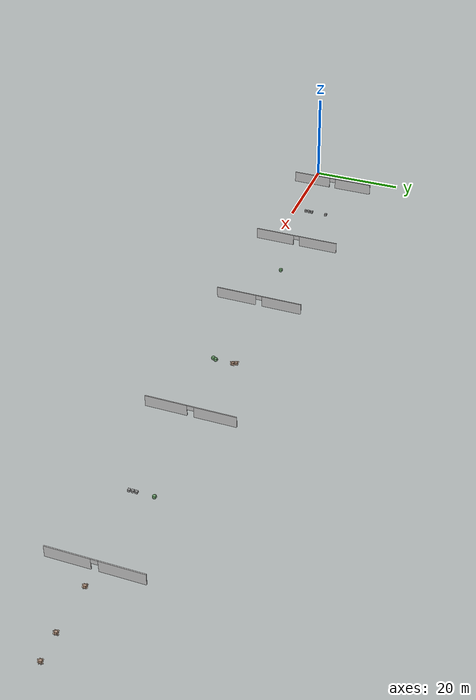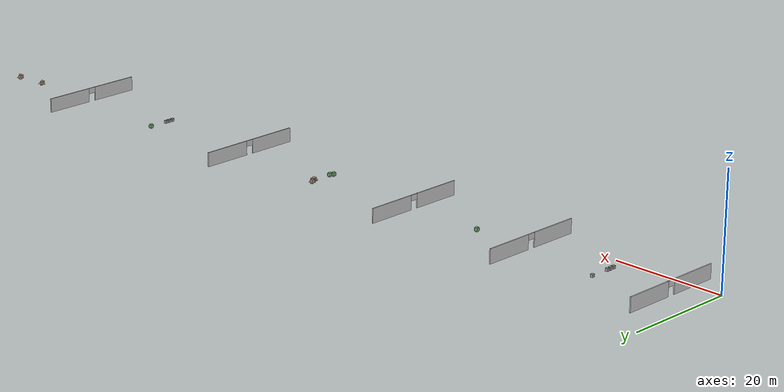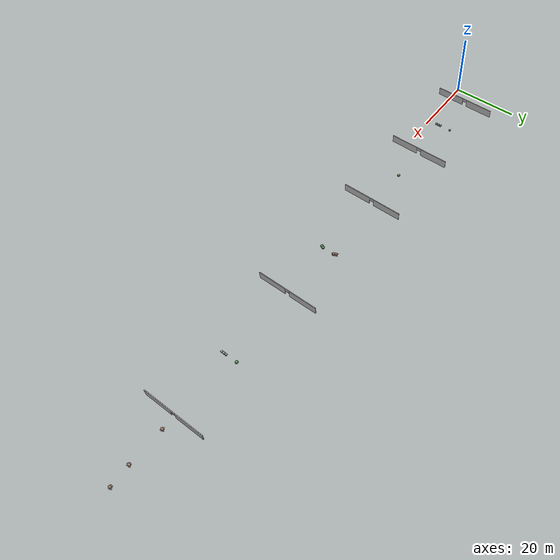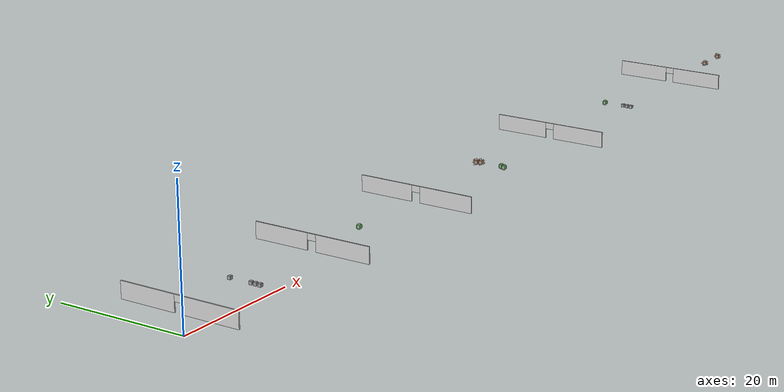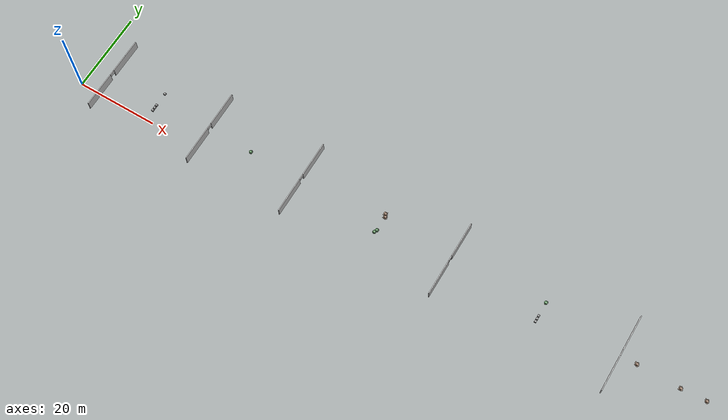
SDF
<sdf version="1.6">
 <world name="default">
  <light name="sun" type="directional">
   <pose>0 0 10 0 -0 0</pose>
   <diffuse>0.8 0.8 0.8 1</diffuse>
   <specular>0.2 0.2 0.2 1</specular>
   <attenuation>
    <range>1000</range>
    <constant>0.9</constant>
    <linear>0.01</linear>
    <quadratic>0.001</quadratic>
   </attenuation>
   <direction>-0.5 0.1 -0.9</direction>
  </light>
  <gravity>0 0 -9.8</gravity>
  <magnetic_field>6e-06 2.3e-05 -4.2e-05</magnetic_field>
  <atmosphere type="adiabatic"/>
  <physics name="default_physics" default="0" type="ode">
   <max_step_size>0.001</max_step_size>
   <real_time_factor>1</real_time_factor>
   <real_time_update_rate>1000</real_time_update_rate>
  </physics>
  <scene><ambient>0.4 0.4 0.4 1</ambient><background>0.9 0.9 0.9 1</background><shadows>1</shadows></scene>
  <spherical_coordinates>
   <surface_model>EARTH_WGS84</surface_model>
   <latitude_deg>0</latitude_deg>
   <longitude_deg>0</longitude_deg>
   <elevation>0</elevation>
   <heading_deg>0</heading_deg>
  </spherical_coordinates>
  <model name="trap_cont_1_attr">
   <static>0</static>
   <static>0</static>
   <link name="normal_cue_0::vis_cue_normal">
    <inertial>
     <mass>1</mass>
     <inertia>
      <ixx>0.166667</ixx>
      <ixy>0</ixy>
      <ixz>0</ixz>
      <iyy>0.166667</iyy>
      <iyz>0</iyz>
      <izz>0.166667</izz>
     </inertia>
    </inertial>
    <collision name="collision"><geometry><box><size>0.5 0.5 0.5</size></box></geometry></collision>
    <visual name="box_visual">
     <geometry><box><size>0.5 0.5 0.5</size></box></geometry>
     <material>
      <script><name>Gazebo/Grey</name><uri>file://media/materials/scripts/gazebo.material</uri></script>
     </material>
    </visual>
    <pose>0 -2.48 0.25 0 -0 0</pose>
   </link>
   <static>0</static>
   <link name="normal_cue_1::vis_cue_normal">
    <inertial>
     <mass>1</mass>
     <inertia>
      <ixx>0.166667</ixx>
      <ixy>0</ixy>
      <ixz>0</ixz>
      <iyy>0.166667</iyy>
      <iyz>0</iyz>
      <izz>0.166667</izz>
     </inertia>
    </inertial>
    <collision name="collision"><geometry><box><size>0.5 0.5 0.5</size></box></geometry></collision>
    <visual name="box_visual">
     <geometry><box><size>0.5 0.5 0.5</size></box></geometry>
     <material>
      <script><name>Gazebo/Grey</name><uri>file://media/materials/scripts/gazebo.material</uri></script>
     </material>
    </visual>
    <pose>0 -1.745 0.25 0 -0 0</pose>
   </link>
   <static>0</static>
   <link name="normal_cue_2::vis_cue_normal">
    <inertial>
     <mass>1</mass>
     <inertia>
      <ixx>0.166667</ixx>
      <ixy>0</ixy>
      <ixz>0</ixz>
      <iyy>0.166667</iyy>
      <iyz>0</iyz>
      <izz>0.166667</izz>
     </inertia>
    </inertial>
    <collision name="collision"><geometry><box><size>0.5 0.5 0.5</size></box></geometry></collision>
    <visual name="box_visual">
     <geometry><box><size>0.5 0.5 0.5</size></box></geometry>
     <material>
      <script><name>Gazebo/Grey</name><uri>file://media/materials/scripts/gazebo.material</uri></script>
     </material>
    </visual>
    <pose>0 -1.01 0.25 0 -0 0</pose>
   </link>
   <static>0</static>
   <link name="normal_cue_3::vis_cue_normal">
    <inertial>
     <mass>1</mass>
     <inertia>
      <ixx>0.166667</ixx>
      <ixy>0</ixy>
      <ixz>0</ixz>
      <iyy>0.166667</iyy>
      <iyz>0</iyz>
      <izz>0.166667</izz>
     </inertia>
    </inertial>
    <collision name="collision"><geometry><box><size>0.5 0.5 0.5</size></box></geometry></collision>
    <visual name="box_visual">
     <geometry><box><size>0.5 0.5 0.5</size></box></geometry>
     <material>
      <script><name>Gazebo/Grey</name><uri>file://media/materials/scripts/gazebo.material</uri></script>
     </material>
    </visual>
    <pose>0 2.48 0.25 0 -0 0</pose>
   </link>
   <pose>18.2945 5.26555 -1.8e-05 -6e-06 0 0</pose>
  </model>
  <model name="trap_cont_2_ubias">
   <static>0</static>
   <static>0</static>
   <link name="attracting_cue_0::vis_cue_attract">
    <inertial>
     <mass>1</mass>
     <inertia>
      <ixx>0.166667</ixx>
      <ixy>0</ixy>
      <ixz>0</ixz>
      <iyy>0.166667</iyy>
      <iyz>0</iyz>
      <izz>0.166667</izz>
     </inertia>
    </inertial>
    <collision name="collision"><geometry><box><size>0.5 0.5 0.5</size></box></geometry></collision>
    <visual name="box_visual">
     <geometry><box><size>0.5 0.5 0.5</size></box></geometry>
     <material>
      <script><name>Gazebo/Grey</name><uri>file://media/materials/scripts/gazebo.material</uri></script>
     </material>
    </visual>
    <visual name="cue_visual">
     <geometry><sphere><radius>0.45</radius></sphere></geometry>
     <material>
      <ambient>0 1 0 0.15</ambient>
      <diffuse>0 1 0 0.15</diffuse>
      <specular>0 1 0 0.15</specular>
      <emissive>0 0 0 0</emissive>
     </material>
    </visual>
    <pose>0 -2.48 0.25 0 -0 0</pose>
   </link>
   <static>0</static>
   <link name="attracting_cue_1::vis_cue_attract">
    <inertial>
     <mass>1</mass>
     <inertia>
      <ixx>0.166667</ixx>
      <ixy>0</ixy>
      <ixz>0</ixz>
      <iyy>0.166667</iyy>
      <iyz>0</iyz>
      <izz>0.166667</izz>
     </inertia>
    </inertial>
    <collision name="collision"><geometry><box><size>0.5 0.5 0.5</size></box></geometry></collision>
    <visual name="box_visual">
     <geometry><box><size>0.5 0.5 0.5</size></box></geometry>
     <material>
      <script><name>Gazebo/Grey</name><uri>file://media/materials/scripts/gazebo.material</uri></script>
     </material>
    </visual>
    <visual name="cue_visual">
     <geometry><sphere><radius>0.45</radius></sphere></geometry>
     <material>
      <ambient>0 1 0 0.15</ambient>
      <diffuse>0 1 0 0.15</diffuse>
      <specular>0 1 0 0.15</specular>
      <emissive>0 0 0 0</emissive>
     </material>
    </visual>
    <pose>0.3 -1.845 0.25 0 -0 0</pose>
   </link>
   <static>0</static>
   <link name="repelling_cue_0::vis_cue_repel">
    <inertial>
     <mass>1</mass>
     <inertia>
      <ixx>0.166667</ixx>
      <ixy>0</ixy>
      <ixz>0</ixz>
      <iyy>0.166667</iyy>
      <iyz>0</iyz>
      <izz>0.166667</izz>
     </inertia>
    </inertial>
    <collision name="collision"><geometry><box><size>0.5 0.5 0.5</size></box></geometry></collision>
    <visual name="box_visual">
     <geometry><box><size>0.5 0.5 0.5</size></box></geometry>
     <material>
      <script><name>Gazebo/Grey</name><uri>file://media/materials/scripts/gazebo.material</uri></script>
     </material>
    </visual>
    <visual name="cue_visual">
     <geometry><mesh><uri>model://repelling_cue_2.dae</uri><scale>0.85 0.85 0.85</scale></mesh></geometry>
     <material>
      <ambient>1 0.4 0 0.2</ambient>
      <diffuse>1 0.4 0 0.2</diffuse>
      <specular>1 0.4 0 0.5</specular>
      <emissive>0.5 0.2 0 0.1</emissive>
     </material>
    </visual>
    <pose>0.3 1.845 0.25 0 -0 0</pose>
   </link>
   <static>0</static>
   <link name="repelling_cue_1::vis_cue_repel">
    <inertial>
     <mass>1</mass>
     <inertia>
      <ixx>0.166667</ixx>
      <ixy>0</ixy>
      <ixz>0</ixz>
      <iyy>0.166667</iyy>
      <iyz>0</iyz>
      <izz>0.166667</izz>
     </inertia>
    </inertial>
    <collision name="collision"><geometry><box><size>0.5 0.5 0.5</size></box></geometry></collision>
    <visual name="box_visual">
     <geometry><box><size>0.5 0.5 0.5</size></box></geometry>
     <material>
      <script><name>Gazebo/Grey</name><uri>file://media/materials/scripts/gazebo.material</uri></script>
     </material>
    </visual>
    <visual name="cue_visual">
     <geometry><mesh><uri>model://repelling_cue_2.dae</uri><scale>0.85 0.85 0.85</scale></mesh></geometry>
     <material>
      <ambient>1 0.4 0 0.2</ambient>
      <diffuse>1 0.4 0 0.2</diffuse>
      <specular>1 0.4 0 0.5</specular>
      <emissive>0.5 0.2 0 0.1</emissive>
     </material>
    </visual>
    <pose>0 2.48 0.25 0 -0 0</pose>
   </link>
   <pose>78.2658 5.37701 -2.4e-05 -7e-06 7e-06 0</pose>
  </model>
  <model name="vis_cue_attract">
   <static>0</static>
   <pose>43.8193 5.4016 0.249997 0 -6e-06 0</pose>
   <link name="vis_cue_attract">
    <inertial>
     <mass>1</mass>
     <inertia>
      <ixx>0.166667</ixx>
      <ixy>0</ixy>
      <ixz>0</ixz>
      <iyy>0.166667</iyy>
      <iyz>0</iyz>
      <izz>0.166667</izz>
     </inertia>
    </inertial>
    <collision name="collision"><geometry><box><size>0.5 0.5 0.5</size></box></geometry></collision>
    <visual name="box_visual">
     <geometry><box><size>0.5 0.5 0.5</size></box></geometry>
     <material>
      <script><name>Gazebo/Grey</name><uri>file://media/materials/scripts/gazebo.material</uri></script>
     </material>
    </visual>
    <visual name="cue_visual">
     <geometry><sphere><radius>0.45</radius></sphere></geometry>
     <material>
      <ambient>0 1 0 0.15</ambient>
      <diffuse>0 1 0 0.15</diffuse>
      <specular>0 1 0 0.15</specular>
      <emissive>0 0 0 0</emissive>
     </material>
    </visual>
   </link>
  </model>
  <model name="vis_cue_repel">
   <static>0</static>
   <pose>152.409 5.33396 0.249993 0 6e-06 0</pose>
   <link name="vis_cue_repel">
    <inertial>
     <mass>1</mass>
     <inertia>
      <ixx>0.166667</ixx>
      <ixy>0</ixy>
      <ixz>0</ixz>
      <iyy>0.166667</iyy>
      <iyz>0</iyz>
      <izz>0.166667</izz>
     </inertia>
    </inertial>
    <collision name="collision"><geometry><box><size>0.5 0.5 0.5</size></box></geometry></collision>
    <visual name="box_visual">
     <geometry><box><size>0.5 0.5 0.5</size></box></geometry>
     <material>
      <script><name>Gazebo/Grey</name><uri>file://media/materials/scripts/gazebo.material</uri></script>
     </material>
    </visual>
    <visual name="cue_visual">
     <geometry><mesh><uri>model://repelling_cue_2.dae</uri><scale>0.85 0.85 0.85</scale></mesh></geometry>
     <material>
      <ambient>1 0.4 0 0.2</ambient>
      <diffuse>1 0.4 0 0.2</diffuse>
      <specular>1 0.4 0 0.5</specular>
      <emissive>0.5 0.2 0 0.1</emissive>
     </material>
    </visual>
   </link>
  </model>
  <model name="trap_cont_1_attr_0">
   <static>0</static>
   <static>0</static>
   <link name="normal_cue_0::vis_cue_normal">
    <inertial>
     <mass>1</mass>
     <inertia>
      <ixx>0.166667</ixx>
      <ixy>0</ixy>
      <ixz>0</ixz>
      <iyy>0.166667</iyy>
      <iyz>0</iyz>
      <izz>0.166667</izz>
     </inertia>
    </inertial>
    <collision name="collision"><geometry><box><size>0.5 0.5 0.5</size></box></geometry></collision>
    <visual name="box_visual">
     <geometry><box><size>0.5 0.5 0.5</size></box></geometry>
     <material>
      <script><name>Gazebo/Grey</name><uri>file://media/materials/scripts/gazebo.material</uri></script>
     </material>
    </visual>
    <pose>0 -2.48 0.25 0 -0 0</pose>
   </link>
   <static>0</static>
   <link name="normal_cue_1::vis_cue_normal">
    <inertial>
     <mass>1</mass>
     <inertia>
      <ixx>0.166667</ixx>
      <ixy>0</ixy>
      <ixz>0</ixz>
      <iyy>0.166667</iyy>
      <iyz>0</iyz>
      <izz>0.166667</izz>
     </inertia>
    </inertial>
    <collision name="collision"><geometry><box><size>0.5 0.5 0.5</size></box></geometry></collision>
    <visual name="box_visual">
     <geometry><box><size>0.5 0.5 0.5</size></box></geometry>
     <material>
      <script><name>Gazebo/Grey</name><uri>file://media/materials/scripts/gazebo.material</uri></script>
     </material>
    </visual>
    <pose>0 -1.745 0.25 0 -0 0</pose>
   </link>
   <static>0</static>
   <link name="normal_cue_2::vis_cue_normal">
    <inertial>
     <mass>1</mass>
     <inertia>
      <ixx>0.166667</ixx>
      <ixy>0</ixy>
      <ixz>0</ixz>
      <iyy>0.166667</iyy>
      <iyz>0</iyz>
      <izz>0.166667</izz>
     </inertia>
    </inertial>
    <collision name="collision"><geometry><box><size>0.5 0.5 0.5</size></box></geometry></collision>
    <visual name="box_visual">
     <geometry><box><size>0.5 0.5 0.5</size></box></geometry>
     <material>
      <script><name>Gazebo/Grey</name><uri>file://media/materials/scripts/gazebo.material</uri></script>
     </material>
    </visual>
    <pose>0 -1.01 0.25 0 -0 0</pose>
   </link>
   <static>0</static>
   <link name="attracting_cue_0::vis_cue_attract">
    <inertial>
     <mass>1</mass>
     <inertia>
      <ixx>0.166667</ixx>
      <ixy>0</ixy>
      <ixz>0</ixz>
      <iyy>0.166667</iyy>
      <iyz>0</iyz>
      <izz>0.166667</izz>
     </inertia>
    </inertial>
    <collision name="collision"><geometry><box><size>0.5 0.5 0.5</size></box></geometry></collision>
    <visual name="box_visual">
     <geometry><box><size>0.5 0.5 0.5</size></box></geometry>
     <material>
      <script><name>Gazebo/Grey</name><uri>file://media/materials/scripts/gazebo.material</uri></script>
     </material>
    </visual>
    <visual name="cue_visual">
     <geometry><sphere><radius>0.45</radius></sphere></geometry>
     <material>
      <ambient>0 1 0 0.15</ambient>
      <diffuse>0 1 0 0.15</diffuse>
      <specular>0 1 0 0.15</specular>
      <emissive>0 0 0 0</emissive>
     </material>
    </visual>
    <pose>0 2.48 0.25 0 -0 0</pose>
   </link>
   <pose>118.956 5.22752 1.4e-05 7e-06 -7e-06 0</pose>
  </model>
  <model name="vis_cue_repel_clone_clone">
   <static>0</static>
   <pose>158.322 5.64222 0.249997 -6e-06 0 0</pose>
   <link name="vis_cue_repel">
    <inertial>
     <mass>1</mass>
     <inertia>
      <ixx>0.166667</ixx>
      <ixy>0</ixy>
      <ixz>0</ixz>
      <iyy>0.166667</iyy>
      <iyz>0</iyz>
      <izz>0.166667</izz>
     </inertia>
    </inertial>
    <collision name="collision"><geometry><box><size>0.5 0.5 0.5</size></box></geometry></collision>
    <visual name="box_visual">
     <geometry><box><size>0.5 0.5 0.5</size></box></geometry>
     <material>
      <script><name>Gazebo/Grey</name><uri>file://media/materials/scripts/gazebo.material</uri></script>
     </material>
    </visual>
    <visual name="cue_visual">
     <geometry><mesh><uri>model://repelling_cue_2.dae</uri><scale>0.85 0.85 0.85</scale></mesh></geometry>
     <material>
      <ambient>1 0.4 0 0.2</ambient>
      <diffuse>1 0.4 0 0.2</diffuse>
      <specular>1 0.4 0 0.5</specular>
      <emissive>0.5 0.2 0 0.1</emissive>
     </material>
    </visual>
   </link>
  </model>
  <model name="vis_cue_repel_clone_clone_clone">
   <static>0</static>
   <pose>142.082 5.37791 0.249994 7e-06 -7e-06 0</pose>
   <link name="vis_cue_repel">
    <inertial>
     <mass>1</mass>
     <inertia>
      <ixx>0.166667</ixx>
      <ixy>0</ixy>
      <ixz>0</ixz>
      <iyy>0.166667</iyy>
      <iyz>0</iyz>
      <izz>0.166667</izz>
     </inertia>
    </inertial>
    <collision name="collision"><geometry><box><size>0.5 0.5 0.5</size></box></geometry></collision>
    <visual name="box_visual">
     <geometry><box><size>0.5 0.5 0.5</size></box></geometry>
     <material>
      <script><name>Gazebo/Grey</name><uri>file://media/materials/scripts/gazebo.material</uri></script>
     </material>
    </visual>
    <visual name="cue_visual">
     <geometry><mesh><uri>model://repelling_cue_2.dae</uri><scale>0.85 0.85 0.85</scale></mesh></geometry>
     <material>
      <ambient>1 0.4 0 0.2</ambient>
      <diffuse>1 0.4 0 0.2</diffuse>
      <specular>1 0.4 0 0.5</specular>
      <emissive>0.5 0.2 0 0.1</emissive>
     </material>
    </visual>
   </link>
  </model>
  <model name="study_track_gate_block_5">
   <static>1</static>
   <link name="gate_l">
    <pose>0 -5.1 1.25 0 -0 0</pose>
    <collision name="collision"><geometry><box><size>0.2 8.8 2.5</size></box></geometry></collision>
    <visual name="visual">
     <geometry><box><size>0.2 8.8 2.5</size></box></geometry>
     <material>
      <ambient>0.7 0.7 0.7 1</ambient>
      <diffuse>0.8 0.8 0.8 1</diffuse>
      <specular>0.1 0.1 0.1 1</specular>
      <emissive>0 0 0 0</emissive>
     </material>
    </visual>
   </link>
   <link name="gate_r">
    <pose>0 5.1 1.25 0 -0 0</pose>
    <collision name="collision"><geometry><box><size>0.2 8.8 2.5</size></box></geometry></collision>
    <visual name="visual">
     <geometry><box><size>0.2 8.8 2.5</size></box></geometry>
     <material>
      <ambient>0.7 0.7 0.7 1</ambient>
      <diffuse>0.8 0.8 0.8 1</diffuse>
      <specular>0.1 0.1 0.1 1</specular>
      <emissive>0 0 0 0</emissive>
     </material>
    </visual>
   </link>
   <link name="gate_m">
    <pose>0 0 2 0 -0 0</pose>
    <collision name="collision"><geometry><box><size>0.2 1.4 1</size></box></geometry></collision>
    <visual name="visual">
     <geometry><box><size>0.2 1.4 1</size></box></geometry>
     <material>
      <ambient>0.7 0.7 0.7 1</ambient>
      <diffuse>0.8 0.8 0.8 1</diffuse>
      <specular>0.1 0.1 0.1 1</specular>
      <emissive>0 0 0 0</emissive>
     </material>
    </visual>
   </link>
   <pose>138.104 5.26233 0 0 -0 0</pose>
  </model>
  <model name="study_track_gate_block_3">
   <static>1</static>
   <link name="gate_l">
    <pose>0 -5.1 1.25 0 -0 0</pose>
    <collision name="collision"><geometry><box><size>0.2 8.8 2.5</size></box></geometry></collision>
    <visual name="visual">
     <geometry><box><size>0.2 8.8 2.5</size></box></geometry>
     <material>
      <ambient>0.7 0.7 0.7 1</ambient>
      <diffuse>0.8 0.8 0.8 1</diffuse>
      <specular>0.1 0.1 0.1 1</specular>
      <emissive>0 0 0 0</emissive>
     </material>
    </visual>
   </link>
   <link name="gate_r">
    <pose>0 5.1 1.25 0 -0 0</pose>
    <collision name="collision"><geometry><box><size>0.2 8.8 2.5</size></box></geometry></collision>
    <visual name="visual">
     <geometry><box><size>0.2 8.8 2.5</size></box></geometry>
     <material>
      <ambient>0.7 0.7 0.7 1</ambient>
      <diffuse>0.8 0.8 0.8 1</diffuse>
      <specular>0.1 0.1 0.1 1</specular>
      <emissive>0 0 0 0</emissive>
     </material>
    </visual>
   </link>
   <link name="gate_m">
    <pose>0 0 2 0 -0 0</pose>
    <collision name="collision"><geometry><box><size>0.2 1.4 1</size></box></geometry></collision>
    <visual name="visual">
     <geometry><box><size>0.2 1.4 1</size></box></geometry>
     <material>
      <ambient>0.7 0.7 0.7 1</ambient>
      <diffuse>0.8 0.8 0.8 1</diffuse>
      <specular>0.1 0.1 0.1 1</specular>
      <emissive>0 0 0 0</emissive>
     </material>
    </visual>
   </link>
   <pose>96.2215 5.30491 0 0 -0 0</pose>
  </model>
  <model name="study_track_gate_block_2">
   <static>1</static>
   <link name="gate_l">
    <pose>0 -5.1 1.25 0 -0 0</pose>
    <collision name="collision"><geometry><box><size>0.2 8.8 2.5</size></box></geometry></collision>
    <visual name="visual">
     <geometry><box><size>0.2 8.8 2.5</size></box></geometry>
     <material>
      <ambient>0.7 0.7 0.7 1</ambient>
      <diffuse>0.8 0.8 0.8 1</diffuse>
      <specular>0.1 0.1 0.1 1</specular>
      <emissive>0 0 0 0</emissive>
     </material>
    </visual>
   </link>
   <link name="gate_r">
    <pose>0 5.1 1.25 0 -0 0</pose>
    <collision name="collision"><geometry><box><size>0.2 8.8 2.5</size></box></geometry></collision>
    <visual name="visual">
     <geometry><box><size>0.2 8.8 2.5</size></box></geometry>
     <material>
      <ambient>0.7 0.7 0.7 1</ambient>
      <diffuse>0.8 0.8 0.8 1</diffuse>
      <specular>0.1 0.1 0.1 1</specular>
      <emissive>0 0 0 0</emissive>
     </material>
    </visual>
   </link>
   <link name="gate_m">
    <pose>0 0 2 0 -0 0</pose>
    <collision name="collision"><geometry><box><size>0.2 1.4 1</size></box></geometry></collision>
    <visual name="visual">
     <geometry><box><size>0.2 1.4 1</size></box></geometry>
     <material>
      <ambient>0.7 0.7 0.7 1</ambient>
      <diffuse>0.8 0.8 0.8 1</diffuse>
      <specular>0.1 0.1 0.1 1</specular>
      <emissive>0 0 0 0</emissive>
     </material>
    </visual>
   </link>
   <pose>57.6814 5.20538 0 0 -0 0</pose>
  </model>
  <model name="study_track_gate_block_1">
   <static>1</static>
   <link name="gate_l">
    <pose>0 -5.1 1.25 0 -0 0</pose>
    <collision name="collision"><geometry><box><size>0.2 8.8 2.5</size></box></geometry></collision>
    <visual name="visual">
     <geometry><box><size>0.2 8.8 2.5</size></box></geometry>
     <material>
      <ambient>0.7 0.7 0.7 1</ambient>
      <diffuse>0.8 0.8 0.8 1</diffuse>
      <specular>0.1 0.1 0.1 1</specular>
      <emissive>0 0 0 0</emissive>
     </material>
    </visual>
   </link>
   <link name="gate_r">
    <pose>0 5.1 1.25 0 -0 0</pose>
    <collision name="collision"><geometry><box><size>0.2 8.8 2.5</size></box></geometry></collision>
    <visual name="visual">
     <geometry><box><size>0.2 8.8 2.5</size></box></geometry>
     <material>
      <ambient>0.7 0.7 0.7 1</ambient>
      <diffuse>0.8 0.8 0.8 1</diffuse>
      <specular>0.1 0.1 0.1 1</specular>
      <emissive>0 0 0 0</emissive>
     </material>
    </visual>
   </link>
   <link name="gate_m">
    <pose>0 0 2 0 -0 0</pose>
    <collision name="collision"><geometry><box><size>0.2 1.4 1</size></box></geometry></collision>
    <visual name="visual">
     <geometry><box><size>0.2 1.4 1</size></box></geometry>
     <material>
      <ambient>0.7 0.7 0.7 1</ambient>
      <diffuse>0.8 0.8 0.8 1</diffuse>
      <specular>0.1 0.1 0.1 1</specular>
      <emissive>0 0 0 0</emissive>
     </material>
    </visual>
   </link>
   <pose>32.6912 5.27663 0 0 -0 0</pose>
  </model>
  <model name="study_track_gate_block_0">
   <static>1</static>
   <link name="gate_l">
    <pose>0 -5.1 1.25 0 -0 0</pose>
    <collision name="collision"><geometry><box><size>0.2 8.8 2.5</size></box></geometry></collision>
    <visual name="visual">
     <geometry><box><size>0.2 8.8 2.5</size></box></geometry>
     <material>
      <ambient>0.7 0.7 0.7 1</ambient>
      <diffuse>0.8 0.8 0.8 1</diffuse>
      <specular>0.1 0.1 0.1 1</specular>
      <emissive>0 0 0 0</emissive>
     </material>
    </visual>
   </link>
   <link name="gate_r">
    <pose>0 5.1 1.25 0 -0 0</pose>
    <collision name="collision"><geometry><box><size>0.2 8.8 2.5</size></box></geometry></collision>
    <visual name="visual">
     <geometry><box><size>0.2 8.8 2.5</size></box></geometry>
     <material>
      <ambient>0.7 0.7 0.7 1</ambient>
      <diffuse>0.8 0.8 0.8 1</diffuse>
      <specular>0.1 0.1 0.1 1</specular>
      <emissive>0 0 0 0</emissive>
     </material>
    </visual>
   </link>
   <link name="gate_m">
    <pose>0 0 2 0 -0 0</pose>
    <collision name="collision"><geometry><box><size>0.2 1.4 1</size></box></geometry></collision>
    <visual name="visual">
     <geometry><box><size>0.2 1.4 1</size></box></geometry>
     <material>
      <ambient>0.7 0.7 0.7 1</ambient>
      <diffuse>0.8 0.8 0.8 1</diffuse>
      <specular>0.1 0.1 0.1 1</specular>
      <emissive>0 0 0 0</emissive>
     </material>
    </visual>
   </link>
   <pose>5.38244 5.31495 0 0 -0 0</pose>
  </model>
 </world>
</sdf>
